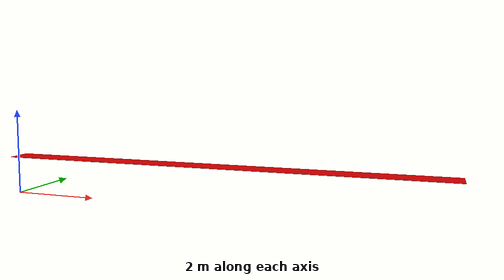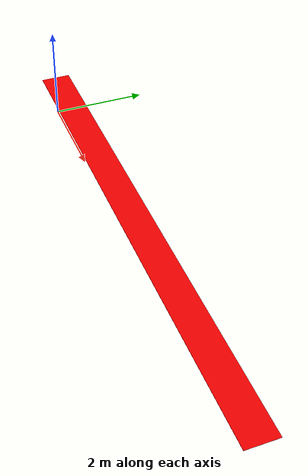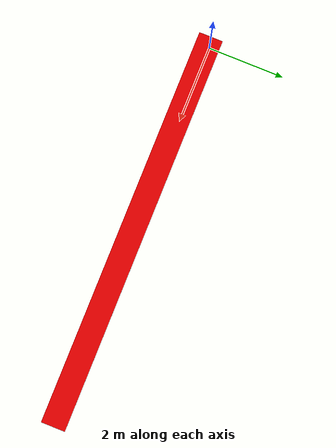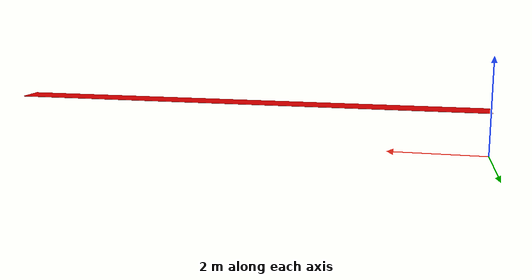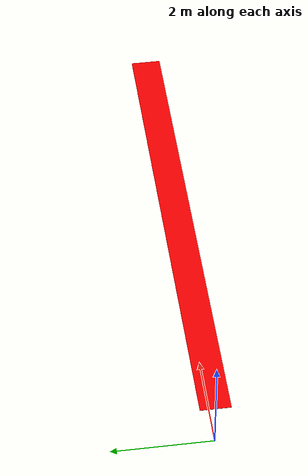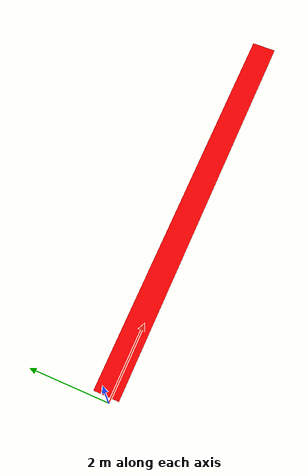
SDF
<?xml version="1.0" ?>
<sdf version="1.6">
  <model name="conveyor_belt">

    <model name="conveyor_belt_fixed">
      <static>true</static>
      <pose>0 0 0 0 0 0</pose>
      <link name="link">
        <pose>0 0 0 0 0 0</pose>
      </link>
    </model>

    <model name="conveyor_belt_moving">
      <static>false</static>
      <pose>0 0 0.92 0 0 0</pose>
      <link name="belt">
        <pose>5 0 -0.003 0 0 0</pose>

        <inertial>
          <inertia>
            <ixx>3.8185</ixx>
            <ixy>0</ixy>
            <ixz>0</ixz>
            <iyy>1781.5</iyy>
            <iyz>0</iyz>
            <izz>1784.72</izz>
          </inertia>
          <mass>100</mass>
        </inertial>

        <collision name="belt_collision">
          <geometry>
            <box>
              <size>10 0.6 0.006</size>
            </box>
          </geometry>

          <surface>
            <friction>
              <ode>
                <mu>1.0</mu>
                <mu2>1.0</mu2>
              </ode>
              <torsional>
                <coefficient>1000.0</coefficient>
                <patch_radius>0.1</patch_radius>
              </torsional>
            </friction>
          </surface>

        </collision>

        <visual name="visual">
        <geometry>
          <box>
            <size>10 0.6 0.006</size>
          </box>
        </geometry>
        <material>
          <ambient>1 0 0 1</ambient>
          <diffuse>1 0 0 1</diffuse>
          <specular>0.1 0.1 0.1 1</specular>
          <emissive>0 0 0 0</emissive>
        </material>
      </visual>

      </link>
    </model>

    <joint name="belt_joint" type="prismatic">
      <parent>conveyor_belt_fixed::link</parent>
      <child>conveyor_belt_moving::belt</child>
      <axis>
        <xyz>1 0 0</xyz>
        <limit>
          <lower>0</lower>
          <upper>1.0</upper>
        </limit>
      </axis>
    </joint>

    <plugin name="conveyor_belt_plugin" filename="libROSConveyorBeltPlugin.so">
      <robot_namespace>/gazebo_sim</robot_namespace>
      <population_rate_modifier_topic>/gazebo_sim/population/rate_modifier</population_rate_modifier_topic>
      <link>conveyor_belt::conveyor_belt_moving::belt</link>
      <power>0</power>
      <min_velocity>0.0</min_velocity>
      <max_velocity>1.0</max_velocity>
    </plugin>

  </model>
</sdf>
